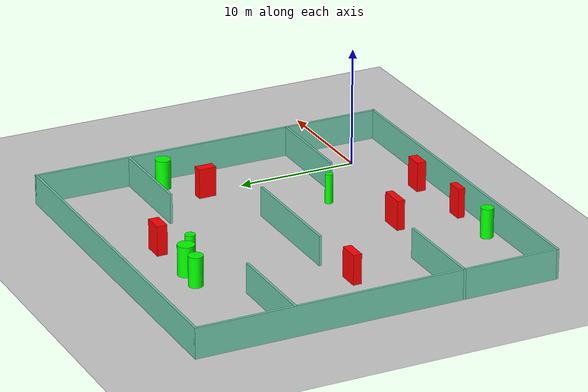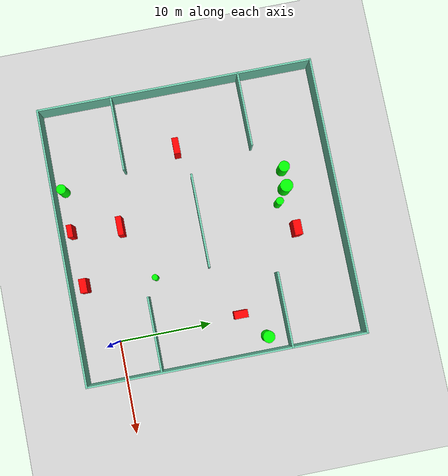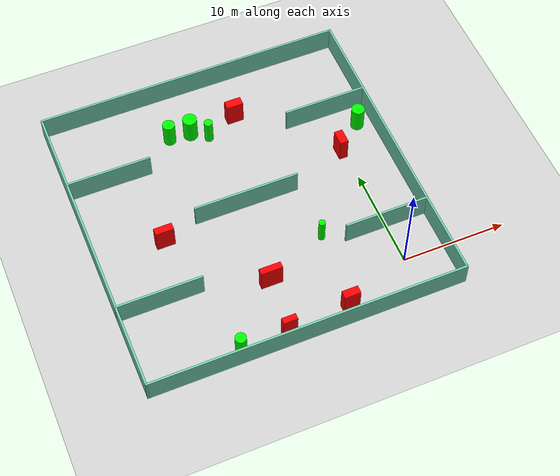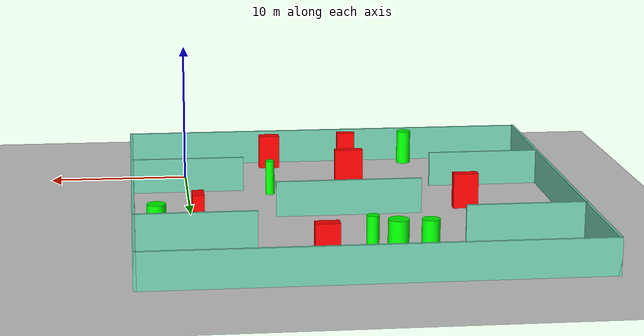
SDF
<sdf version="1.7">
 <world name="default">
  <light name="sun" type="directional">
   <pose>0 0 10 0 -0 0</pose>
   <diffuse>0.8 0.8 0.8 1</diffuse>
   <specular>0.2 0.2 0.2 1</specular>
   <attenuation>
    <range>1000</range>
    <constant>0.9</constant>
    <linear>0.01</linear>
    <quadratic>0.001</quadratic>
   </attenuation>
   <direction>-0.5 0.1 -0.9</direction>
   <spot><inner_angle>0</inner_angle><outer_angle>0</outer_angle><falloff>0</falloff></spot>
  </light>
  <model name="ground_plane">
   <static>1</static>
   <link name="link">
    <collision name="collision">
     <geometry><plane><normal>0 0 1</normal><size>100 100</size></plane></geometry>
     <surface>
      <contact><collide_bitmask>65535</collide_bitmask></contact>
      <friction><ode><mu>100</mu><mu2>50</mu2></ode></friction>
     </surface>
    </collision>
    <visual name="visual">
     <cast_shadows>0</cast_shadows>
     <geometry><plane><normal>0 0 1</normal><size>100 100</size></plane></geometry>
     <material>
      <script><uri>file://media/materials/scripts/gazebo.material</uri><name>Gazebo/Grey</name></script>
     </material>
    </visual>
   </link>
  </model>
  <gravity>0 0 -9.8</gravity>
  <magnetic_field>6e-06 2.3e-05 -4.2e-05</magnetic_field>
  <atmosphere type="adiabatic"/>
  <physics type="ode">
   <max_step_size>0.001</max_step_size>
   <real_time_factor>1</real_time_factor>
   <real_time_update_rate>1000</real_time_update_rate>
  </physics>
  <scene><ambient>0.4 0.4 0.4 1</ambient><background>0.7 0.7 0.7 1</background><shadows>1</shadows></scene>
  <spherical_coordinates>
   <surface_model>EARTH_WGS84</surface_model>
   <latitude_deg>0</latitude_deg>
   <longitude_deg>0</longitude_deg>
   <elevation>0</elevation>
   <heading_deg>0</heading_deg>
  </spherical_coordinates>
  <model name="my_base_walls">
   <link name="Wall_10">
    <collision name="Wall_10_Collision">
     <geometry><box><size>8.2 0.2 2.5</size></box></geometry>
     <pose>0 0 1.25 0 -0 0</pose>
    </collision>
    <visual name="Wall_10_Visual">
     <pose>0 0 1.25 0 -0 0</pose>
     <geometry><box><size>8.2 0.2 2.5</size></box></geometry>
     <material>
      <script><uri>file://media/materials/scripts/gazebo.material</uri><name>Gazebo/Grey</name></script>
      <ambient>0.435294 0.796078 0.67451 1</ambient>
     </material>
     <meta><layer>0</layer></meta>
    </visual>
    <pose>-11 -7 0 0 -0 0</pose>
   </link>
   <link name="Wall_12">
    <collision name="Wall_12_Collision">
     <geometry><box><size>8.2 0.2 2.5</size></box></geometry>
     <pose>0 0 1.25 0 -0 0</pose>
    </collision>
    <visual name="Wall_12_Visual">
     <pose>0 0 1.25 0 -0 0</pose>
     <geometry><box><size>8.2 0.2 2.5</size></box></geometry>
     <material>
      <script><uri>file://media/materials/scripts/gazebo.material</uri><name>Gazebo/Grey</name></script>
      <ambient>0.435294 0.796078 0.67451 1</ambient>
     </material>
     <meta><layer>0</layer></meta>
    </visual>
    <pose>-11 7 0 0 -0 0</pose>
   </link>
   <link name="Wall_14">
    <collision name="Wall_14_Collision">
     <geometry><box><size>8.2 0.2 2.5</size></box></geometry>
     <pose>0 0 1.25 0 -0 0</pose>
    </collision>
    <visual name="Wall_14_Visual">
     <pose>0 0 1.25 0 -0 0</pose>
     <geometry><box><size>8.2 0.2 2.5</size></box></geometry>
     <material>
      <script><uri>file://media/materials/scripts/gazebo.material</uri><name>Gazebo/Grey</name></script>
      <ambient>0.435294 0.796078 0.67451 1</ambient>
     </material>
     <meta><layer>0</layer></meta>
    </visual>
    <pose>11 7 0 0 -0 3.14159</pose>
   </link>
   <link name="Wall_16">
    <collision name="Wall_16_Collision">
     <geometry><box><size>10.2 0.2 2.5</size></box></geometry>
     <pose>0 0 1.25 0 -0 0</pose>
    </collision>
    <visual name="Wall_16_Visual">
     <pose>0 0 1.25 0 -0 0</pose>
     <geometry><box><size>10.2 0.2 2.5</size></box></geometry>
     <material>
      <script><uri>file://media/materials/scripts/gazebo.material</uri><name>Gazebo/Grey</name></script>
      <ambient>0.435294 0.796078 0.67451 1</ambient>
     </material>
     <meta><layer>0</layer></meta>
    </visual>
    <pose>0 0 0 0 -0 3.14159</pose>
   </link>
   <link name="Wall_2">
    <collision name="Wall_2_Collision">
     <geometry><box><size>30.2 0.2 2.5</size></box></geometry>
     <pose>0 0 1.25 0 -0 0</pose>
    </collision>
    <visual name="Wall_2_Visual">
     <pose>0 0 1.25 0 -0 0</pose>
     <geometry><box><size>30.2 0.2 2.5</size></box></geometry>
     <material>
      <script><uri>file://media/materials/scripts/gazebo.material</uri><name>Gazebo/Grey</name></script>
      <ambient>0.435294 0.796078 0.67451 1</ambient>
     </material>
     <meta><layer>0</layer></meta>
    </visual>
    <pose>0 -15 0 0 -0 3.14159</pose>
   </link>
   <link name="Wall_3">
    <collision name="Wall_3_Collision">
     <geometry><box><size>30.2 0.2 2.5</size></box></geometry>
     <pose>0 0 1.25 0 -0 0</pose>
    </collision>
    <visual name="Wall_3_Visual">
     <pose>0 0 1.25 0 -0 0</pose>
     <geometry><box><size>30.2 0.2 2.5</size></box></geometry>
     <material>
      <script><uri>file://media/materials/scripts/gazebo.material</uri><name>Gazebo/Grey</name></script>
      <ambient>0.435294 0.796078 0.67451 1</ambient>
     </material>
     <meta><layer>0</layer></meta>
    </visual>
    <pose>-15 0 0 0 -0 1.5708</pose>
   </link>
   <link name="Wall_4">
    <collision name="Wall_4_Collision">
     <geometry><box><size>30.2 0.2 2.5</size></box></geometry>
     <pose>0 0 1.25 0 -0 0</pose>
    </collision>
    <visual name="Wall_4_Visual">
     <pose>0 0 1.25 0 -0 0</pose>
     <geometry><box><size>30.2 0.2 2.5</size></box></geometry>
     <material>
      <script><uri>file://media/materials/scripts/gazebo.material</uri><name>Gazebo/Grey</name></script>
      <ambient>0.435294 0.796078 0.67451 1</ambient>
     </material>
     <meta><layer>0</layer></meta>
    </visual>
    <pose>0 15 0 0 -0 0</pose>
   </link>
   <link name="Wall_6">
    <collision name="Wall_6_Collision">
     <geometry><box><size>30.2 0.2 2.5</size></box></geometry>
     <pose>0 0 1.25 0 -0 0</pose>
    </collision>
    <visual name="Wall_6_Visual">
     <pose>0 0 1.25 0 -0 0</pose>
     <geometry><box><size>30.2 0.2 2.5</size></box></geometry>
     <material>
      <script><uri>file://media/materials/scripts/gazebo.material</uri><name>Gazebo/Grey</name></script>
      <ambient>0.435294 0.796078 0.67451 1</ambient>
     </material>
     <meta><layer>0</layer></meta>
    </visual>
    <pose>15 0 0 0 -0 1.5708</pose>
   </link>
   <link name="Wall_8">
    <collision name="Wall_8_Collision">
     <geometry><box><size>8.2 0.2 2.5</size></box></geometry>
     <pose>0 0 1.25 0 -0 0</pose>
    </collision>
    <visual name="Wall_8_Visual">
     <pose>0 0 1.25 0 -0 0</pose>
     <geometry><box><size>8.2 0.2 2.5</size></box></geometry>
     <material>
      <script><uri>file://media/materials/scripts/gazebo.material</uri><name>Gazebo/Grey</name></script>
      <ambient>0.435294 0.796078 0.67451 1</ambient>
     </material>
     <meta><layer>0</layer></meta>
    </visual>
    <pose>11 -7 0 0 -0 3.14159</pose>
   </link>
   <static>1</static>
   <pose>-11 11 0 0 -0 0</pose>
  </model>
  <model name="cylinder1">
   <static>1</static>
   <link name="link">
    <inertial>
     <mass>1</mass>
     <inertia><ixx>0.5</ixx><ixy>0</ixy><ixz>0</ixz><iyy>0.5</iyy><iyz>0</iyz><izz>1</izz></inertia>
    </inertial>
    <collision name="collision">
     <geometry><cylinder><radius>0.523289707497171</radius><length>2.5</length></cylinder></geometry>
    </collision>
    <visual name="visual">
     <geometry><cylinder><radius>0.523289707497171</radius><length>2.5</length></cylinder></geometry>
     <material>
      <ambient>0 1 0 1</ambient>
      <diffuse>0 1 0 1</diffuse>
      <specular>0.1 0.1 0.1 1</specular>
      <emissive>0 0 0 0</emissive>
     </material>
    </visual>
   </link>
   <pose>-17.109241085634178 -2.9570114948274715 1.25 0 0 0</pose>
  </model>
  <model name="cylinder2">
   <static>1</static>
   <link name="link">
    <inertial>
     <mass>1</mass>
     <inertia><ixx>0.5</ixx><ixy>0</ixy><ixz>0</ixz><iyy>0.5</iyy><iyz>0</iyz><izz>1</izz></inertia>
    </inertial>
    <collision name="collision">
     <geometry><cylinder><radius>0.42118344499134874</radius><length>2.5</length></cylinder></geometry>
    </collision>
    <visual name="visual">
     <geometry><cylinder><radius>0.42118344499134874</radius><length>2.5</length></cylinder></geometry>
     <material>
      <ambient>0 1 0 1</ambient>
      <diffuse>0 1 0 1</diffuse>
      <specular>0.1 0.1 0.1 1</specular>
      <emissive>0 0 0 0</emissive>
     </material>
    </visual>
   </link>
   <pose>-11.422746694043239 19.729801032501435 1.25 0 0 0</pose>
  </model>
  <model name="cylinder3">
   <static>1</static>
   <link name="link">
    <inertial>
     <mass>1</mass>
     <inertia><ixx>0.5</ixx><ixy>0</ixy><ixz>0</ixz><iyy>0.5</iyy><iyz>0</iyz><izz>1</izz></inertia>
    </inertial>
    <collision name="collision">
     <geometry><cylinder><radius>0.3223296691768772</radius><length>2.5</length></cylinder></geometry>
    </collision>
    <visual name="visual">
     <geometry><cylinder><radius>0.3223296691768772</radius><length>2.5</length></cylinder></geometry>
     <material>
      <ambient>0 1 0 1</ambient>
      <diffuse>0 1 0 1</diffuse>
      <specular>0.1 0.1 0.1 1</specular>
      <emissive>0 0 0 0</emissive>
     </material>
    </visual>
   </link>
   <pose>-5.976344925279079 5.138774855580783 1.25 0 0 0</pose>
  </model>
  <model name="cylinder4">
   <static>1</static>
   <link name="link">
    <inertial>
     <mass>1</mass>
     <inertia><ixx>0.5</ixx><ixy>0</ixy><ixz>0</ixz><iyy>0.5</iyy><iyz>0</iyz><izz>1</izz></inertia>
    </inertial>
    <collision name="collision">
     <geometry><cylinder><radius>0.635272971634963</radius><length>2.5</length></cylinder></geometry>
    </collision>
    <visual name="visual">
     <geometry><cylinder><radius>0.635272971634963</radius><length>2.5</length></cylinder></geometry>
     <material>
      <ambient>0 1 0 1</ambient>
      <diffuse>0 1 0 1</diffuse>
      <specular>0.1 0.1 0.1 1</specular>
      <emissive>0 0 0 0</emissive>
     </material>
    </visual>
   </link>
   <pose>2.4513597734149073 15.74491837566342 1.25 0 0 0</pose>
  </model>
  <model name="cylinder5">
   <static>1</static>
   <link name="link">
    <inertial>
     <mass>1</mass>
     <inertia><ixx>0.5</ixx><ixy>0</ixy><ixz>0</ixz><iyy>0.5</iyy><iyz>0</iyz><izz>1</izz></inertia>
    </inertial>
    <collision name="collision">
     <geometry><cylinder><radius>0.5950312493886413</radius><length>2.5</length></cylinder></geometry>
    </collision>
    <visual name="visual">
     <geometry><cylinder><radius>0.5950312493886413</radius><length>2.5</length></cylinder></geometry>
     <material>
      <ambient>0 1 0 1</ambient>
      <diffuse>0 1 0 1</diffuse>
      <specular>0.1 0.1 0.1 1</specular>
      <emissive>0 0 0 0</emissive>
     </material>
    </visual>
   </link>
   <pose>-15.00504610493684 20.923566711935113 1.25 0 0 0</pose>
  </model>
  <model name="cylinder6">
   <static>1</static>
   <link name="link">
    <inertial>
     <mass>1</mass>
     <inertia><ixx>0.5</ixx><ixy>0</ixy><ixz>0</ixz><iyy>0.5</iyy><iyz>0</iyz><izz>1</izz></inertia>
    </inertial>
    <collision name="collision">
     <geometry><cylinder><radius>0.6928000744474578</radius><length>2.5</length></cylinder></geometry>
    </collision>
    <visual name="visual">
     <geometry><cylinder><radius>0.6928000744474578</radius><length>2.5</length></cylinder></geometry>
     <material>
      <ambient>0 1 0 1</ambient>
      <diffuse>0 1 0 1</diffuse>
      <specular>0.1 0.1 0.1 1</specular>
      <emissive>0 0 0 0</emissive>
     </material>
    </visual>
   </link>
   <pose>-12.932167919176605 20.76680452928661 1.25 0 0 0</pose>
  </model>
  <model name="box1">
   <static>1</static>
   <link name="link">
    <inertial>
     <mass>1</mass>
     <inertia><ixx>0.083</ixx><ixy>0</ixy><ixz>0</ixz><iyy>0.083</iyy><iyz>0</iyz><izz>0.083</izz></inertia>
    </inertial>
    <collision name="collision">
     <geometry><box><size>1.6302402743724531 0.8627706451200006 2.5</size></box></geometry>
    </collision>
    <visual name="visual">
     <geometry><box><size>1.6302402743724531 0.8627706451200006 2.5</size></box></geometry>
     <material>
      <ambient>1 0 0 1</ambient>
      <diffuse>1 0 0 1</diffuse>
      <specular>0.1 0.1 0.1 1</specular>
      <emissive>0 0 0 0</emissive>
     </material>
    </visual>
    <sensor name="my_contact" type="contact">
     <contact><collision>box_collision</collision><topic>__default_topic__</topic></contact>
    </sensor>
   </link>
   <pose>-8.31062043321359 21.02639564008598 1.25 0 0 0</pose>
  </model>
  <model name="box2">
   <static>1</static>
   <link name="link">
    <inertial>
     <mass>1</mass>
     <inertia><ixx>0.083</ixx><ixy>0</ixy><ixz>0</ixz><iyy>0.083</iyy><iyz>0</iyz><izz>0.083</izz></inertia>
    </inertial>
    <collision name="collision">
     <geometry><box><size>2.0591250712335887 0.6310211518771961 2.5</size></box></geometry>
    </collision>
    <visual name="visual">
     <geometry><box><size>2.0591250712335887 0.6310211518771961 2.5</size></box></geometry>
     <material>
      <ambient>1 0 0 1</ambient>
      <diffuse>1 0 0 1</diffuse>
      <specular>0.1 0.1 0.1 1</specular>
      <emissive>0 0 0 0</emissive>
     </material>
    </visual>
    <sensor name="my_contact" type="contact">
     <contact><collision>box_collision</collision><topic>__default_topic__</topic></contact>
    </sensor>
   </link>
   <pose>-12.083845516947362 2.454874732607208 1.25 0 0 0</pose>
  </model>
  <model name="box3">
   <static>1</static>
   <link name="link">
    <inertial>
     <mass>1</mass>
     <inertia><ixx>0.083</ixx><ixy>0</ixy><ixz>0</ixz><iyy>0.083</iyy><iyz>0</iyz><izz>0.083</izz></inertia>
    </inertial>
    <collision name="collision">
     <geometry><box><size>1.7557635442857629 0.7060173762262207 2.5</size></box></geometry>
    </collision>
    <visual name="visual">
     <geometry><box><size>1.7557635442857629 0.7060173762262207 2.5</size></box></geometry>
     <material>
      <ambient>1 0 0 1</ambient>
      <diffuse>1 0 0 1</diffuse>
      <specular>0.1 0.1 0.1 1</specular>
      <emissive>0 0 0 0</emissive>
     </material>
    </visual>
    <sensor name="my_contact" type="contact">
     <contact><collision>box_collision</collision><topic>__default_topic__</topic></contact>
    </sensor>
   </link>
   <pose>-19.431180847918252 9.978411100972089 1.25 0 0 0</pose>
  </model>
  <model name="box4">
   <static>1</static>
   <link name="link">
    <inertial>
     <mass>1</mass>
     <inertia><ixx>0.083</ixx><ixy>0</ixy><ixz>0</ixz><iyy>0.083</iyy><iyz>0</iyz><izz>0.083</izz></inertia>
    </inertial>
    <collision name="collision">
     <geometry><box><size>1.3611632813212813 0.5840501250976357 2.5</size></box></geometry>
    </collision>
    <visual name="visual">
     <geometry><box><size>1.3611632813212813 0.5840501250976357 2.5</size></box></geometry>
     <material>
      <ambient>1 0 0 1</ambient>
      <diffuse>1 0 0 1</diffuse>
      <specular>0.1 0.1 0.1 1</specular>
      <emissive>0 0 0 0</emissive>
     </material>
    </visual>
    <sensor name="my_contact" type="contact">
     <contact><collision>box_collision</collision><topic>__default_topic__</topic></contact>
    </sensor>
   </link>
   <pose>-12.525183456622146 -2.849994452762556 1.25 0 0 0</pose>
  </model>
  <model name="box5">
   <static>1</static>
   <link name="link">
    <inertial>
     <mass>1</mass>
     <inertia><ixx>0.083</ixx><ixy>0</ixy><ixz>0</ixz><iyy>0.083</iyy><iyz>0</iyz><izz>0.083</izz></inertia>
    </inertial>
    <collision name="collision">
     <geometry><box><size>0.8267200805176602 1.4735550249029494 2.5</size></box></geometry>
    </collision>
    <visual name="visual">
     <geometry><box><size>0.8267200805176602 1.4735550249029494 2.5</size></box></geometry>
     <material>
      <ambient>1 0 0 1</ambient>
      <diffuse>1 0 0 1</diffuse>
      <specular>0.1 0.1 0.1 1</specular>
      <emissive>0 0 0 0</emissive>
     </material>
    </visual>
    <sensor name="my_contact" type="contact">
     <contact><collision>box_collision</collision><topic>__default_topic__</topic></contact>
    </sensor>
   </link>
   <pose>-0.40449254294659553 13.326985350287586 1.25 0 0 0</pose>
  </model>
  <model name="box6">
   <static>1</static>
   <link name="link">
    <inertial>
     <mass>1</mass>
     <inertia><ixx>0.083</ixx><ixy>0</ixy><ixz>0</ixz><iyy>0.083</iyy><iyz>0</iyz><izz>0.083</izz></inertia>
    </inertial>
    <collision name="collision">
     <geometry><box><size>1.5345337550565026 0.7745420358659763 2.5</size></box></geometry>
    </collision>
    <visual name="visual">
     <geometry><box><size>1.5345337550565026 0.7745420358659763 2.5</size></box></geometry>
     <material>
      <ambient>1 0 0 1</ambient>
      <diffuse>1 0 0 1</diffuse>
      <specular>0.1 0.1 0.1 1</specular>
      <emissive>0 0 0 0</emissive>
     </material>
    </visual>
    <sensor name="my_contact" type="contact">
     <contact><collision>box_collision</collision><topic>__default_topic__</topic></contact>
    </sensor>
   </link>
   <pose>-6.532209679003586 -2.4842046863763563 1.25 0 0 0</pose>
  </model>
 </world>
</sdf>
